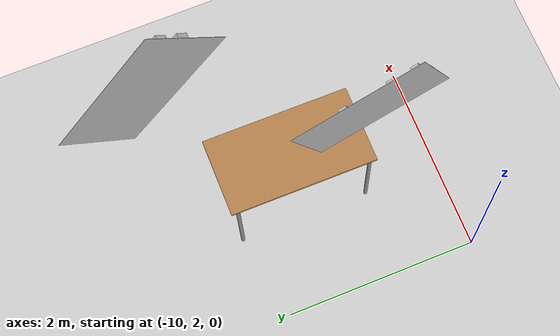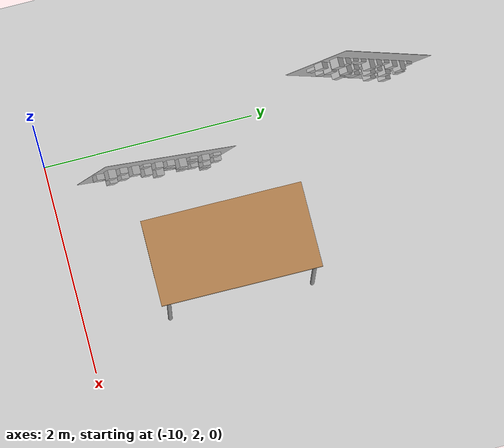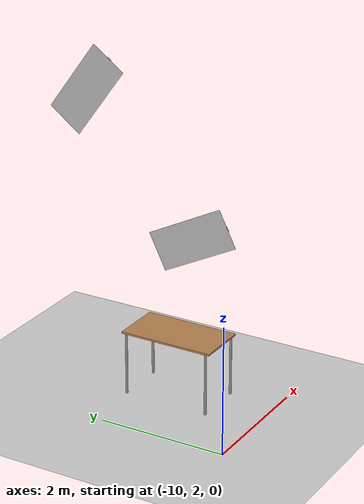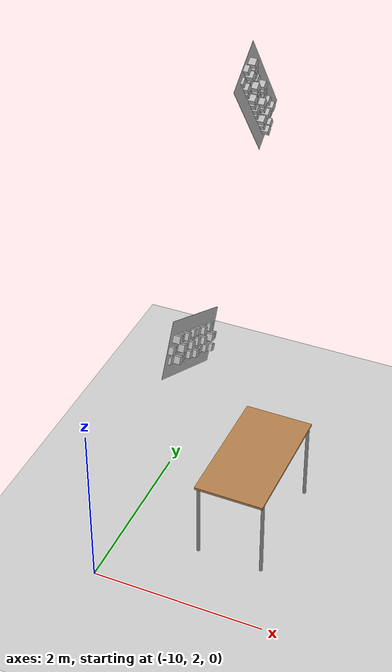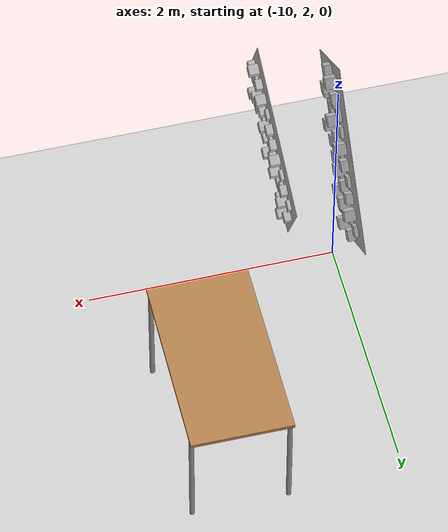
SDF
<sdf version="1.4">
 <world name="default">
  <model name="ground_plane">
   <static>1</static>
   <link name="link">
    <collision name="collision">
     <geometry><plane><normal>0 0 1</normal><size>100 100</size></plane></geometry>
     <surface><friction><ode><mu>100</mu><mu2>50</mu2></ode></friction></surface>
    </collision>
    <visual name="visual">
     <cast_shadows>0</cast_shadows>
     <geometry><plane><normal>0 0 1</normal><size>100 100</size></plane></geometry>
     <material>
      <script><uri>file://media/materials/scripts/gazebo.material</uri><name>Gazebo/Grey</name></script>
     </material>
    </visual>
    <velocity_decay><linear>0</linear><angular>0</angular></velocity_decay>
   </link>
  </model>
  <model name="table">
   <static>1</static>
   <link name="link">
    <collision name="surface">
     <pose>0 0 1 0 -0 0</pose>
     <geometry><box><size>1.5 0.8 0.03</size></box></geometry>
     <surface><friction><ode><mu>0.6</mu><mu2>0.6</mu2></ode></friction></surface>
    </collision>
    <visual name="visual1">
     <pose>0 0 1 0 -0 0</pose>
     <geometry><box><size>1.5 0.8 0.03</size></box></geometry>
     <material>
      <script><uri>file://media/materials/scripts/gazebo.material</uri><name>Gazebo/Wood</name></script>
     </material>
    </visual>
    <collision name="front_left_leg">
     <pose>0.68 0.38 0.5 0 -0 0</pose>
     <geometry><cylinder><radius>0.02</radius><length>1</length></cylinder></geometry>
    </collision>
    <visual name="front_left_leg">
     <pose>0.68 0.38 0.5 0 -0 0</pose>
     <geometry><cylinder><radius>0.02</radius><length>1</length></cylinder></geometry>
     <material>
      <script><uri>file://media/materials/scripts/gazebo.material</uri><name>Gazebo/Grey</name></script>
     </material>
    </visual>
    <collision name="front_right_leg">
     <pose>0.68 -0.38 0.5 0 -0 0</pose>
     <geometry><cylinder><radius>0.02</radius><length>1</length></cylinder></geometry>
    </collision>
    <visual name="front_right_leg">
     <pose>0.68 -0.38 0.5 0 -0 0</pose>
     <geometry><cylinder><radius>0.02</radius><length>1</length></cylinder></geometry>
     <material>
      <script><uri>file://media/materials/scripts/gazebo.material</uri><name>Gazebo/Grey</name></script>
     </material>
    </visual>
    <collision name="back_right_leg">
     <pose>-0.68 -0.38 0.5 0 -0 0</pose>
     <geometry><cylinder><radius>0.02</radius><length>1</length></cylinder></geometry>
    </collision>
    <visual name="back_right_leg">
     <pose>-0.68 -0.38 0.5 0 -0 0</pose>
     <geometry><cylinder><radius>0.02</radius><length>1</length></cylinder></geometry>
     <material>
      <script><uri>file://media/materials/scripts/gazebo.material</uri><name>Gazebo/Grey</name></script>
     </material>
    </visual>
    <collision name="back_left_leg">
     <pose>-0.68 0.38 0.5 0 -0 0</pose>
     <geometry><cylinder><radius>0.02</radius><length>1</length></cylinder></geometry>
    </collision>
    <visual name="back_left_leg">
     <pose>-0.68 0.38 0.5 0 -0 0</pose>
     <geometry><cylinder><radius>0.02</radius><length>1</length></cylinder></geometry>
     <material>
      <script><uri>file://media/materials/scripts/gazebo.material</uri><name>Gazebo/Grey</name></script>
     </material>
    </visual>
    <velocity_decay><linear>0</linear><angular>0</angular></velocity_decay>
   </link>
   <pose>-8.70605 3.47361 0 0 -0 1.56552</pose>
  </model>
  <model name="frc2016_roughterrain_0">
   <static>1</static>
   <link name="link">
    <visual name="platform">
     <pose>0 0 0.08269 0 -0 0</pose>
     <geometry><box><size>1.27 0.5969 0.003175</size></box></geometry>
    </visual>
    <collision name="platform">
     <pose>0 0 0.08269 0 -0 0</pose>
     <geometry><box><size>1.27 0.5969 0.003175</size></box></geometry>
    </collision>
    <visual name="row1_block1_sm">
     <pose>0.51435 0.1143 0.09698 0 -0 0</pose>
     <geometry><box><size>0.0762 0.0762 0.0254</size></box></geometry>
    </visual>
    <collision name="row1_block1_sm">
     <pose>0.51435 0.1143 0.09698 0 -0 0</pose>
     <geometry><box><size>0.0762 0.0762 0.0254</size></box></geometry>
    </collision>
    <visual name="row1_block2_lg">
     <pose>0.40005 0.1143 0.12238 0 -0 0</pose>
     <geometry><box><size>0.0762 0.0762 0.0762</size></box></geometry>
    </visual>
    <collision name="row1_block2_lg">
     <pose>0.40005 0.1143 0.12238 0 -0 0</pose>
     <geometry><box><size>0.0762 0.0762 0.0762</size></box></geometry>
    </collision>
    <visual name="row1_block3_md">
     <pose>0.28575 0.1143 0.10968 0 -0 0</pose>
     <geometry><box><size>0.0762 0.0762 0.0508</size></box></geometry>
    </visual>
    <collision name="row1_block3_md">
     <pose>0.28575 0.1143 0.10968 0 -0 0</pose>
     <geometry><box><size>0.0762 0.0762 0.0508</size></box></geometry>
    </collision>
    <visual name="row1_block4_sm">
     <pose>0.17145 0.1143 0.09698 0 -0 0</pose>
     <geometry><box><size>0.0762 0.0762 0.0254</size></box></geometry>
    </visual>
    <collision name="row1_block4_sm">
     <pose>0.17145 0.1143 0.09698 0 -0 0</pose>
     <geometry><box><size>0.0762 0.0762 0.0254</size></box></geometry>
    </collision>
    <visual name="row1_block5_md">
     <pose>0.05715 0.1143 0.10968 0 -0 0</pose>
     <geometry><box><size>0.0762 0.0762 0.0508</size></box></geometry>
    </visual>
    <collision name="row1_block5_md">
     <pose>0.05715 0.1143 0.10968 0 -0 0</pose>
     <geometry><box><size>0.0762 0.0762 0.0508</size></box></geometry>
    </collision>
    <visual name="row1_block6_lg">
     <pose>-0.05715 0.1143 0.12238 0 -0 0</pose>
     <geometry><box><size>0.0762 0.0762 0.0762</size></box></geometry>
    </visual>
    <collision name="row1_block6_lg">
     <pose>-0.05715 0.1143 0.12238 0 -0 0</pose>
     <geometry><box><size>0.0762 0.0762 0.0762</size></box></geometry>
    </collision>
    <visual name="row1_block7_sm">
     <pose>-0.17145 0.1143 0.09698 0 -0 0</pose>
     <geometry><box><size>0.0762 0.0762 0.0254</size></box></geometry>
    </visual>
    <collision name="row1_block7_sm">
     <pose>-0.17145 0.1143 0.09698 0 -0 0</pose>
     <geometry><box><size>0.0762 0.0762 0.0254</size></box></geometry>
    </collision>
    <visual name="row1_block8_sm">
     <pose>-0.28575 0.1143 0.09698 0 -0 0</pose>
     <geometry><box><size>0.0762 0.0762 0.0254</size></box></geometry>
    </visual>
    <collision name="row1_block8_sm">
     <pose>-0.28575 0.1143 0.09698 0 -0 0</pose>
     <geometry><box><size>0.0762 0.0762 0.0254</size></box></geometry>
    </collision>
    <visual name="row1_block9_md">
     <pose>-0.40005 0.1143 0.10968 0 -0 0</pose>
     <geometry><box><size>0.0762 0.0762 0.0508</size></box></geometry>
    </visual>
    <collision name="row1_block9_md">
     <pose>-0.40005 0.1143 0.10968 0 -0 0</pose>
     <geometry><box><size>0.0762 0.0762 0.0508</size></box></geometry>
    </collision>
    <visual name="row1_block10_lg">
     <pose>-0.51435 0.1143 0.12238 0 -0 0</pose>
     <geometry><box><size>0.0762 0.0762 0.0762</size></box></geometry>
    </visual>
    <collision name="row1_block10_lg">
     <pose>-0.51435 0.1143 0.12238 0 -0 0</pose>
     <geometry><box><size>0.0762 0.0762 0.0762</size></box></geometry>
    </collision>
    <visual name="row2_block1_md">
     <pose>0.5715 0 0.10968 0 -0 0</pose>
     <geometry><box><size>0.0762 0.0762 0.0508</size></box></geometry>
    </visual>
    <collision name="row2_block1_md">
     <pose>0.5715 0 0.10968 0 -0 0</pose>
     <geometry><box><size>0.0762 0.0762 0.0508</size></box></geometry>
    </collision>
    <visual name="row2_block2_sm">
     <pose>0.4572 0 0.09698 0 -0 0</pose>
     <geometry><box><size>0.0762 0.0762 0.0254</size></box></geometry>
    </visual>
    <collision name="row2_block2_sm">
     <pose>0.4572 0 0.09698 0 -0 0</pose>
     <geometry><box><size>0.0762 0.0762 0.0254</size></box></geometry>
    </collision>
    <visual name="row2_block3_lg">
     <pose>0.3429 0 0.12238 0 -0 0</pose>
     <geometry><box><size>0.0762 0.0762 0.0762</size></box></geometry>
    </visual>
    <collision name="row2_block3_lg">
     <pose>0.3429 0 0.12238 0 -0 0</pose>
     <geometry><box><size>0.0762 0.0762 0.0762</size></box></geometry>
    </collision>
    <visual name="row2_block4_md">
     <pose>0.2286 0 0.10968 0 -0 0</pose>
     <geometry><box><size>0.0762 0.0762 0.0508</size></box></geometry>
    </visual>
    <collision name="row2_block4_md">
     <pose>0.2286 0 0.10968 0 -0 0</pose>
     <geometry><box><size>0.0762 0.0762 0.0508</size></box></geometry>
    </collision>
    <visual name="row2_block5_lg">
     <pose>0.1143 0 0.12238 0 -0 0</pose>
     <geometry><box><size>0.0762 0.0762 0.0762</size></box></geometry>
    </visual>
    <collision name="row2_block5_lg">
     <pose>0.1143 0 0.12238 0 -0 0</pose>
     <geometry><box><size>0.0762 0.0762 0.0762</size></box></geometry>
    </collision>
    <visual name="row2_block6_sm">
     <pose>0 0 0.09698 0 -0 0</pose>
     <geometry><box><size>0.0762 0.0762 0.0254</size></box></geometry>
    </visual>
    <collision name="row2_block6_sm">
     <pose>0 0 0.09698 0 -0 0</pose>
     <geometry><box><size>0.0762 0.0762 0.0254</size></box></geometry>
    </collision>
    <visual name="row2_block7_md">
     <pose>-0.1143 0 0.10968 0 -0 0</pose>
     <geometry><box><size>0.0762 0.0762 0.0508</size></box></geometry>
    </visual>
    <collision name="row2_block7_md">
     <pose>-0.1143 0 0.10968 0 -0 0</pose>
     <geometry><box><size>0.0762 0.0762 0.0508</size></box></geometry>
    </collision>
    <visual name="row2_block8_lg">
     <pose>-0.2286 0 0.12238 0 -0 0</pose>
     <geometry><box><size>0.0762 0.0762 0.0762</size></box></geometry>
    </visual>
    <collision name="row2_block8_lg">
     <pose>-0.2286 0 0.12238 0 -0 0</pose>
     <geometry><box><size>0.0762 0.0762 0.0762</size></box></geometry>
    </collision>
    <visual name="row2_block9_sm">
     <pose>-0.3429 0 0.09698 0 -0 0</pose>
     <geometry><box><size>0.0762 0.0762 0.0254</size></box></geometry>
    </visual>
    <collision name="row2_block9_sm">
     <pose>-0.3429 0 0.09698 0 -0 0</pose>
     <geometry><box><size>0.0762 0.0762 0.0254</size></box></geometry>
    </collision>
    <visual name="row2_block10_lg">
     <pose>-0.4572 0 0.12238 0 -0 0</pose>
     <geometry><box><size>0.0762 0.0762 0.0762</size></box></geometry>
    </visual>
    <collision name="row2_block10_lg">
     <pose>-0.4572 0 0.12238 0 -0 0</pose>
     <geometry><box><size>0.0762 0.0762 0.0762</size></box></geometry>
    </collision>
    <visual name="row2_block11_md">
     <pose>-0.5715 0 0.10968 0 -0 0</pose>
     <geometry><box><size>0.0762 0.0762 0.0508</size></box></geometry>
    </visual>
    <collision name="row2_block11_md">
     <pose>-0.5715 0 0.10968 0 -0 0</pose>
     <geometry><box><size>0.0762 0.0762 0.0508</size></box></geometry>
    </collision>
    <visual name="row3_block1_lg">
     <pose>0.51435 -0.1143 0.12238 0 -0 0</pose>
     <geometry><box><size>0.0762 0.0762 0.0762</size></box></geometry>
    </visual>
    <collision name="row3_block1_lg">
     <pose>0.51435 -0.1143 0.12238 0 -0 0</pose>
     <geometry><box><size>0.0762 0.0762 0.0762</size></box></geometry>
    </collision>
    <visual name="row3_block2_md">
     <pose>0.40005 -0.1143 0.10968 0 -0 0</pose>
     <geometry><box><size>0.0762 0.0762 0.0508</size></box></geometry>
    </visual>
    <collision name="row3_block2_md">
     <pose>0.40005 -0.1143 0.10968 0 -0 0</pose>
     <geometry><box><size>0.0762 0.0762 0.0508</size></box></geometry>
    </collision>
    <visual name="row3_block3_lg">
     <pose>0.28575 -0.1143 0.12238 0 -0 0</pose>
     <geometry><box><size>0.0762 0.0762 0.0762</size></box></geometry>
    </visual>
    <collision name="row3_block3_lg">
     <pose>0.28575 -0.1143 0.12238 0 -0 0</pose>
     <geometry><box><size>0.0762 0.0762 0.0762</size></box></geometry>
    </collision>
    <visual name="row3_block4_sm">
     <pose>0.17145 -0.1143 0.09698 0 -0 0</pose>
     <geometry><box><size>0.0762 0.0762 0.0254</size></box></geometry>
    </visual>
    <collision name="row3_block4_sm">
     <pose>0.17145 -0.1143 0.09698 0 -0 0</pose>
     <geometry><box><size>0.0762 0.0762 0.0254</size></box></geometry>
    </collision>
    <visual name="row3_block5_md">
     <pose>0.05715 -0.1143 0.10968 0 -0 0</pose>
     <geometry><box><size>0.0762 0.0762 0.0508</size></box></geometry>
    </visual>
    <collision name="row3_block5_md">
     <pose>0.05715 -0.1143 0.10968 0 -0 0</pose>
     <geometry><box><size>0.0762 0.0762 0.0508</size></box></geometry>
    </collision>
    <visual name="row3_block6_md">
     <pose>-0.05715 -0.1143 0.10968 0 -0 0</pose>
     <geometry><box><size>0.0762 0.0762 0.0508</size></box></geometry>
    </visual>
    <collision name="row3_block6_md">
     <pose>-0.05715 -0.1143 0.10968 0 -0 0</pose>
     <geometry><box><size>0.0762 0.0762 0.0508</size></box></geometry>
    </collision>
    <visual name="row3_block7_lg">
     <pose>-0.17145 -0.1143 0.12238 0 -0 0</pose>
     <geometry><box><size>0.0762 0.0762 0.0762</size></box></geometry>
    </visual>
    <collision name="row3_block7_lg">
     <pose>-0.17145 -0.1143 0.12238 0 -0 0</pose>
     <geometry><box><size>0.0762 0.0762 0.0762</size></box></geometry>
    </collision>
    <visual name="row3_block8_sm">
     <pose>-0.28575 -0.1143 0.09698 0 -0 0</pose>
     <geometry><box><size>0.0762 0.0762 0.0254</size></box></geometry>
    </visual>
    <collision name="row3_block8_sm">
     <pose>-0.28575 -0.1143 0.09698 0 -0 0</pose>
     <geometry><box><size>0.0762 0.0762 0.0254</size></box></geometry>
    </collision>
    <visual name="row3_block9_md">
     <pose>-0.40005 -0.1143 0.10968 0 -0 0</pose>
     <geometry><box><size>0.0762 0.0762 0.0508</size></box></geometry>
    </visual>
    <collision name="row3_block9_md">
     <pose>-0.40005 -0.1143 0.10968 0 -0 0</pose>
     <geometry><box><size>0.0762 0.0762 0.0508</size></box></geometry>
    </collision>
    <visual name="row3_block10_sm">
     <pose>-0.51435 -0.1143 0.09698 0 -0 0</pose>
     <geometry><box><size>0.0762 0.0762 0.0254</size></box></geometry>
    </visual>
    <collision name="row3_block10_sm">
     <pose>-0.51435 -0.1143 0.09698 0 -0 0</pose>
     <geometry><box><size>0.0762 0.0762 0.0254</size></box></geometry>
    </collision>
    <velocity_decay><linear>0</linear><angular>0</angular></velocity_decay>
   </link>
   <pose>-9.31702 2.94589 2.81319 -1.59145 -0.468069 -1.56148</pose>
  </model>
  <model name="frc2016_roughterrain_3">
   <static>1</static>
   <link name="link">
    <visual name="platform">
     <pose>0 0 0.08269 0 -0 0</pose>
     <geometry><box><size>1.27 0.5969 0.003175</size></box></geometry>
    </visual>
    <collision name="platform">
     <pose>0 0 0.08269 0 -0 0</pose>
     <geometry><box><size>1.27 0.5969 0.003175</size></box></geometry>
    </collision>
    <visual name="row1_block1_sm">
     <pose>0.51435 0.1143 0.09698 0 -0 0</pose>
     <geometry><box><size>0.0762 0.0762 0.0254</size></box></geometry>
    </visual>
    <collision name="row1_block1_sm">
     <pose>0.51435 0.1143 0.09698 0 -0 0</pose>
     <geometry><box><size>0.0762 0.0762 0.0254</size></box></geometry>
    </collision>
    <visual name="row1_block2_lg">
     <pose>0.40005 0.1143 0.12238 0 -0 0</pose>
     <geometry><box><size>0.0762 0.0762 0.0762</size></box></geometry>
    </visual>
    <collision name="row1_block2_lg">
     <pose>0.40005 0.1143 0.12238 0 -0 0</pose>
     <geometry><box><size>0.0762 0.0762 0.0762</size></box></geometry>
    </collision>
    <visual name="row1_block3_md">
     <pose>0.28575 0.1143 0.10968 0 -0 0</pose>
     <geometry><box><size>0.0762 0.0762 0.0508</size></box></geometry>
    </visual>
    <collision name="row1_block3_md">
     <pose>0.28575 0.1143 0.10968 0 -0 0</pose>
     <geometry><box><size>0.0762 0.0762 0.0508</size></box></geometry>
    </collision>
    <visual name="row1_block4_sm">
     <pose>0.17145 0.1143 0.09698 0 -0 0</pose>
     <geometry><box><size>0.0762 0.0762 0.0254</size></box></geometry>
    </visual>
    <collision name="row1_block4_sm">
     <pose>0.17145 0.1143 0.09698 0 -0 0</pose>
     <geometry><box><size>0.0762 0.0762 0.0254</size></box></geometry>
    </collision>
    <visual name="row1_block5_md">
     <pose>0.05715 0.1143 0.10968 0 -0 0</pose>
     <geometry><box><size>0.0762 0.0762 0.0508</size></box></geometry>
    </visual>
    <collision name="row1_block5_md">
     <pose>0.05715 0.1143 0.10968 0 -0 0</pose>
     <geometry><box><size>0.0762 0.0762 0.0508</size></box></geometry>
    </collision>
    <visual name="row1_block6_lg">
     <pose>-0.05715 0.1143 0.12238 0 -0 0</pose>
     <geometry><box><size>0.0762 0.0762 0.0762</size></box></geometry>
    </visual>
    <collision name="row1_block6_lg">
     <pose>-0.05715 0.1143 0.12238 0 -0 0</pose>
     <geometry><box><size>0.0762 0.0762 0.0762</size></box></geometry>
    </collision>
    <visual name="row1_block7_sm">
     <pose>-0.17145 0.1143 0.09698 0 -0 0</pose>
     <geometry><box><size>0.0762 0.0762 0.0254</size></box></geometry>
    </visual>
    <collision name="row1_block7_sm">
     <pose>-0.17145 0.1143 0.09698 0 -0 0</pose>
     <geometry><box><size>0.0762 0.0762 0.0254</size></box></geometry>
    </collision>
    <visual name="row1_block8_sm">
     <pose>-0.28575 0.1143 0.09698 0 -0 0</pose>
     <geometry><box><size>0.0762 0.0762 0.0254</size></box></geometry>
    </visual>
    <collision name="row1_block8_sm">
     <pose>-0.28575 0.1143 0.09698 0 -0 0</pose>
     <geometry><box><size>0.0762 0.0762 0.0254</size></box></geometry>
    </collision>
    <visual name="row1_block9_md">
     <pose>-0.40005 0.1143 0.10968 0 -0 0</pose>
     <geometry><box><size>0.0762 0.0762 0.0508</size></box></geometry>
    </visual>
    <collision name="row1_block9_md">
     <pose>-0.40005 0.1143 0.10968 0 -0 0</pose>
     <geometry><box><size>0.0762 0.0762 0.0508</size></box></geometry>
    </collision>
    <visual name="row1_block10_lg">
     <pose>-0.51435 0.1143 0.12238 0 -0 0</pose>
     <geometry><box><size>0.0762 0.0762 0.0762</size></box></geometry>
    </visual>
    <collision name="row1_block10_lg">
     <pose>-0.51435 0.1143 0.12238 0 -0 0</pose>
     <geometry><box><size>0.0762 0.0762 0.0762</size></box></geometry>
    </collision>
    <visual name="row2_block1_md">
     <pose>0.5715 0 0.10968 0 -0 0</pose>
     <geometry><box><size>0.0762 0.0762 0.0508</size></box></geometry>
    </visual>
    <collision name="row2_block1_md">
     <pose>0.5715 0 0.10968 0 -0 0</pose>
     <geometry><box><size>0.0762 0.0762 0.0508</size></box></geometry>
    </collision>
    <visual name="row2_block2_sm">
     <pose>0.4572 0 0.09698 0 -0 0</pose>
     <geometry><box><size>0.0762 0.0762 0.0254</size></box></geometry>
    </visual>
    <collision name="row2_block2_sm">
     <pose>0.4572 0 0.09698 0 -0 0</pose>
     <geometry><box><size>0.0762 0.0762 0.0254</size></box></geometry>
    </collision>
    <visual name="row2_block3_lg">
     <pose>0.3429 0 0.12238 0 -0 0</pose>
     <geometry><box><size>0.0762 0.0762 0.0762</size></box></geometry>
    </visual>
    <collision name="row2_block3_lg">
     <pose>0.3429 0 0.12238 0 -0 0</pose>
     <geometry><box><size>0.0762 0.0762 0.0762</size></box></geometry>
    </collision>
    <visual name="row2_block4_md">
     <pose>0.2286 0 0.10968 0 -0 0</pose>
     <geometry><box><size>0.0762 0.0762 0.0508</size></box></geometry>
    </visual>
    <collision name="row2_block4_md">
     <pose>0.2286 0 0.10968 0 -0 0</pose>
     <geometry><box><size>0.0762 0.0762 0.0508</size></box></geometry>
    </collision>
    <visual name="row2_block5_lg">
     <pose>0.1143 0 0.12238 0 -0 0</pose>
     <geometry><box><size>0.0762 0.0762 0.0762</size></box></geometry>
    </visual>
    <collision name="row2_block5_lg">
     <pose>0.1143 0 0.12238 0 -0 0</pose>
     <geometry><box><size>0.0762 0.0762 0.0762</size></box></geometry>
    </collision>
    <visual name="row2_block6_sm">
     <pose>0 0 0.09698 0 -0 0</pose>
     <geometry><box><size>0.0762 0.0762 0.0254</size></box></geometry>
    </visual>
    <collision name="row2_block6_sm">
     <pose>0 0 0.09698 0 -0 0</pose>
     <geometry><box><size>0.0762 0.0762 0.0254</size></box></geometry>
    </collision>
    <visual name="row2_block7_md">
     <pose>-0.1143 0 0.10968 0 -0 0</pose>
     <geometry><box><size>0.0762 0.0762 0.0508</size></box></geometry>
    </visual>
    <collision name="row2_block7_md">
     <pose>-0.1143 0 0.10968 0 -0 0</pose>
     <geometry><box><size>0.0762 0.0762 0.0508</size></box></geometry>
    </collision>
    <visual name="row2_block8_lg">
     <pose>-0.2286 0 0.12238 0 -0 0</pose>
     <geometry><box><size>0.0762 0.0762 0.0762</size></box></geometry>
    </visual>
    <collision name="row2_block8_lg">
     <pose>-0.2286 0 0.12238 0 -0 0</pose>
     <geometry><box><size>0.0762 0.0762 0.0762</size></box></geometry>
    </collision>
    <visual name="row2_block9_sm">
     <pose>-0.3429 0 0.09698 0 -0 0</pose>
     <geometry><box><size>0.0762 0.0762 0.0254</size></box></geometry>
    </visual>
    <collision name="row2_block9_sm">
     <pose>-0.3429 0 0.09698 0 -0 0</pose>
     <geometry><box><size>0.0762 0.0762 0.0254</size></box></geometry>
    </collision>
    <visual name="row2_block10_lg">
     <pose>-0.4572 0 0.12238 0 -0 0</pose>
     <geometry><box><size>0.0762 0.0762 0.0762</size></box></geometry>
    </visual>
    <collision name="row2_block10_lg">
     <pose>-0.4572 0 0.12238 0 -0 0</pose>
     <geometry><box><size>0.0762 0.0762 0.0762</size></box></geometry>
    </collision>
    <visual name="row2_block11_md">
     <pose>-0.5715 0 0.10968 0 -0 0</pose>
     <geometry><box><size>0.0762 0.0762 0.0508</size></box></geometry>
    </visual>
    <collision name="row2_block11_md">
     <pose>-0.5715 0 0.10968 0 -0 0</pose>
     <geometry><box><size>0.0762 0.0762 0.0508</size></box></geometry>
    </collision>
    <visual name="row3_block1_lg">
     <pose>0.51435 -0.1143 0.12238 0 -0 0</pose>
     <geometry><box><size>0.0762 0.0762 0.0762</size></box></geometry>
    </visual>
    <collision name="row3_block1_lg">
     <pose>0.51435 -0.1143 0.12238 0 -0 0</pose>
     <geometry><box><size>0.0762 0.0762 0.0762</size></box></geometry>
    </collision>
    <visual name="row3_block2_md">
     <pose>0.40005 -0.1143 0.10968 0 -0 0</pose>
     <geometry><box><size>0.0762 0.0762 0.0508</size></box></geometry>
    </visual>
    <collision name="row3_block2_md">
     <pose>0.40005 -0.1143 0.10968 0 -0 0</pose>
     <geometry><box><size>0.0762 0.0762 0.0508</size></box></geometry>
    </collision>
    <visual name="row3_block3_lg">
     <pose>0.28575 -0.1143 0.12238 0 -0 0</pose>
     <geometry><box><size>0.0762 0.0762 0.0762</size></box></geometry>
    </visual>
    <collision name="row3_block3_lg">
     <pose>0.28575 -0.1143 0.12238 0 -0 0</pose>
     <geometry><box><size>0.0762 0.0762 0.0762</size></box></geometry>
    </collision>
    <visual name="row3_block4_sm">
     <pose>0.17145 -0.1143 0.09698 0 -0 0</pose>
     <geometry><box><size>0.0762 0.0762 0.0254</size></box></geometry>
    </visual>
    <collision name="row3_block4_sm">
     <pose>0.17145 -0.1143 0.09698 0 -0 0</pose>
     <geometry><box><size>0.0762 0.0762 0.0254</size></box></geometry>
    </collision>
    <visual name="row3_block5_md">
     <pose>0.05715 -0.1143 0.10968 0 -0 0</pose>
     <geometry><box><size>0.0762 0.0762 0.0508</size></box></geometry>
    </visual>
    <collision name="row3_block5_md">
     <pose>0.05715 -0.1143 0.10968 0 -0 0</pose>
     <geometry><box><size>0.0762 0.0762 0.0508</size></box></geometry>
    </collision>
    <visual name="row3_block6_md">
     <pose>-0.05715 -0.1143 0.10968 0 -0 0</pose>
     <geometry><box><size>0.0762 0.0762 0.0508</size></box></geometry>
    </visual>
    <collision name="row3_block6_md">
     <pose>-0.05715 -0.1143 0.10968 0 -0 0</pose>
     <geometry><box><size>0.0762 0.0762 0.0508</size></box></geometry>
    </collision>
    <visual name="row3_block7_lg">
     <pose>-0.17145 -0.1143 0.12238 0 -0 0</pose>
     <geometry><box><size>0.0762 0.0762 0.0762</size></box></geometry>
    </visual>
    <collision name="row3_block7_lg">
     <pose>-0.17145 -0.1143 0.12238 0 -0 0</pose>
     <geometry><box><size>0.0762 0.0762 0.0762</size></box></geometry>
    </collision>
    <visual name="row3_block8_sm">
     <pose>-0.28575 -0.1143 0.09698 0 -0 0</pose>
     <geometry><box><size>0.0762 0.0762 0.0254</size></box></geometry>
    </visual>
    <collision name="row3_block8_sm">
     <pose>-0.28575 -0.1143 0.09698 0 -0 0</pose>
     <geometry><box><size>0.0762 0.0762 0.0254</size></box></geometry>
    </collision>
    <visual name="row3_block9_md">
     <pose>-0.40005 -0.1143 0.10968 0 -0 0</pose>
     <geometry><box><size>0.0762 0.0762 0.0508</size></box></geometry>
    </visual>
    <collision name="row3_block9_md">
     <pose>-0.40005 -0.1143 0.10968 0 -0 0</pose>
     <geometry><box><size>0.0762 0.0762 0.0508</size></box></geometry>
    </collision>
    <visual name="row3_block10_sm">
     <pose>-0.51435 -0.1143 0.09698 0 -0 0</pose>
     <geometry><box><size>0.0762 0.0762 0.0254</size></box></geometry>
    </visual>
    <collision name="row3_block10_sm">
     <pose>-0.51435 -0.1143 0.09698 0 -0 0</pose>
     <geometry><box><size>0.0762 0.0762 0.0254</size></box></geometry>
    </collision>
    <velocity_decay><linear>0</linear><angular>0</angular></velocity_decay>
   </link>
   <pose>-9.33545 4.66212 4.77186 1.58005 0.939946 1.57827</pose>
  </model>
 </world>
</sdf>
